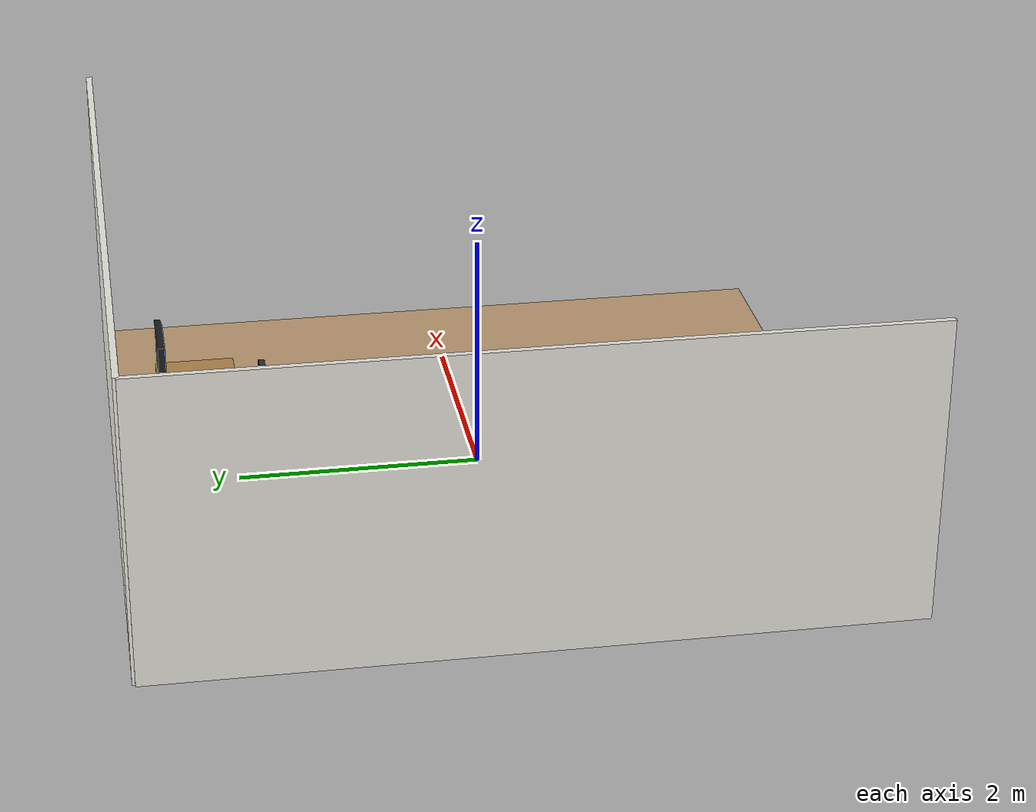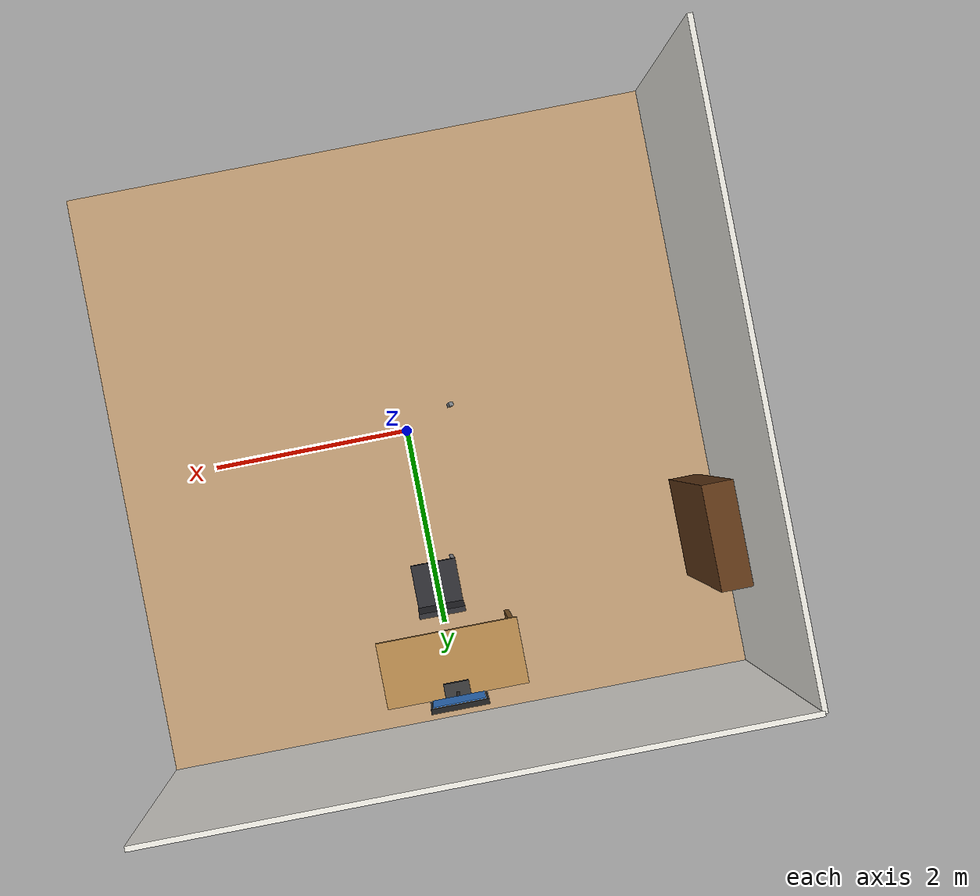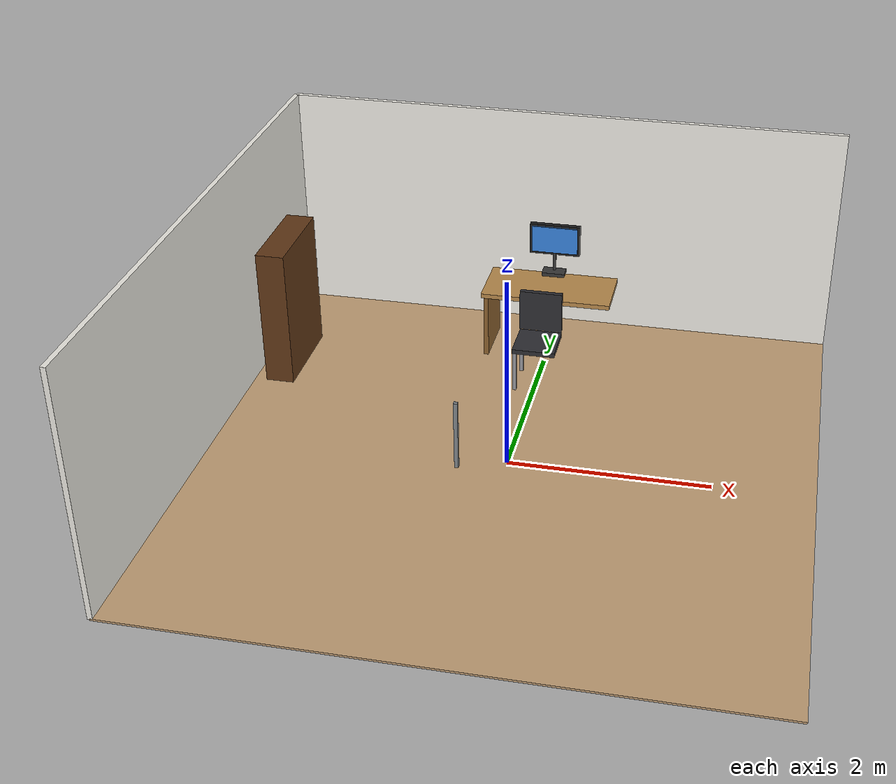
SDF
<sdf version="1.10">
 <world name="bps_room">
  <model name="floor">
   <static>true</static>
   <link name="link">
    <collision name="collision"><geometry><box><size>6 6 0.02</size></box></geometry></collision>
    <visual name="visual">
     <geometry><box><size>6 6 0.02</size></box></geometry>
     <material>
      <ambient>0.75999999 0.620000005 0.460000008 1</ambient>
      <diffuse>0.75999999 0.620000005 0.460000008 1</diffuse>
     </material>
    </visual>
    <inertial>
     <mass>1</mass>
     <inertia><ixx>1</ixx><ixy>0</ixy><ixz>0</ixz><iyy>1</iyy><iyz>0</iyz><izz>1</izz></inertia>
    </inertial>
   </link>
  </model>
  <model name="wall_north">
   <static>true</static>
   <pose>0 3 1.25 0 0 0</pose>
   <link name="link">
    <collision name="collision">
     <geometry><box><size>6 0.050000000000000003 2.5</size></box></geometry>
    </collision>
    <visual name="visual">
     <geometry><box><size>6 0.050000000000000003 2.5</size></box></geometry>
     <material>
      <ambient>0.949999988 0.939999998 0.910000026 1</ambient>
      <diffuse>0.949999988 0.939999998 0.910000026 1</diffuse>
     </material>
    </visual>
    <inertial>
     <mass>1</mass>
     <inertia><ixx>1</ixx><ixy>0</ixy><ixz>0</ixz><iyy>1</iyy><iyz>0</iyz><izz>1</izz></inertia>
    </inertial>
   </link>
  </model>
  <model name="wall_west">
   <static>true</static>
   <pose>-3 0 1.25 0 0 0</pose>
   <link name="link">
    <collision name="collision">
     <geometry><box><size>0.050000000000000003 6 2.5</size></box></geometry>
    </collision>
    <visual name="visual">
     <geometry><box><size>0.050000000000000003 6 2.5</size></box></geometry>
     <material>
      <ambient>0.930000007 0.920000017 0.889999986 1</ambient>
      <diffuse>0.930000007 0.920000017 0.889999986 1</diffuse>
     </material>
    </visual>
    <inertial>
     <mass>1</mass>
     <inertia><ixx>1</ixx><ixy>0</ixy><ixz>0</ixz><iyy>1</iyy><iyz>0</iyz><izz>1</izz></inertia>
    </inertial>
   </link>
  </model>
  <model name="bookshelf_body">
   <static>true</static>
   <pose>-2.7000000000000002 1.5 0.75 0 0 0</pose>
   <link name="link">
    <collision name="collision"><geometry><box><size>0.29999999999999999 1 1.5</size></box></geometry></collision>
    <visual name="visual">
     <geometry><box><size>0.29999999999999999 1 1.5</size></box></geometry>
     <material>
      <ambient>0.379999995 0.219999999 0.0900000036 1</ambient>
      <diffuse>0.379999995 0.219999999 0.0900000036 1</diffuse>
     </material>
    </visual>
    <inertial>
     <mass>1</mass>
     <inertia><ixx>1</ixx><ixy>0</ixy><ixz>0</ixz><iyy>1</iyy><iyz>0</iyz><izz>1</izz></inertia>
    </inertial>
   </link>
  </model>
  <model name="shelf_1">
   <static>true</static>
   <pose>-2.7000000000000002 1.5 0.40000000000000002 0 0 0</pose>
   <link name="link">
    <collision name="collision">
     <geometry><box><size>0.28000000000000003 0.94999999999999996 0.02</size></box></geometry>
    </collision>
    <visual name="visual">
     <geometry><box><size>0.28000000000000003 0.94999999999999996 0.02</size></box></geometry>
     <material>
      <ambient>0.5 0.319999993 0.140000001 1</ambient>
      <diffuse>0.5 0.319999993 0.140000001 1</diffuse>
     </material>
    </visual>
    <inertial>
     <mass>1</mass>
     <inertia><ixx>1</ixx><ixy>0</ixy><ixz>0</ixz><iyy>1</iyy><iyz>0</iyz><izz>1</izz></inertia>
    </inertial>
   </link>
  </model>
  <model name="shelf_2">
   <static>true</static>
   <pose>-2.7000000000000002 1.5 0.84999999999999998 0 0 0</pose>
   <link name="link">
    <collision name="collision">
     <geometry><box><size>0.28000000000000003 0.94999999999999996 0.02</size></box></geometry>
    </collision>
    <visual name="visual">
     <geometry><box><size>0.28000000000000003 0.94999999999999996 0.02</size></box></geometry>
     <material>
      <ambient>0.5 0.319999993 0.140000001 1</ambient>
      <diffuse>0.5 0.319999993 0.140000001 1</diffuse>
     </material>
    </visual>
    <inertial>
     <mass>1</mass>
     <inertia><ixx>1</ixx><ixy>0</ixy><ixz>0</ixz><iyy>1</iyy><iyz>0</iyz><izz>1</izz></inertia>
    </inertial>
   </link>
  </model>
  <model name="shelf_3">
   <static>true</static>
   <pose>-2.7000000000000002 1.5 1.25 0 0 0</pose>
   <link name="link">
    <collision name="collision">
     <geometry><box><size>0.28000000000000003 0.94999999999999996 0.02</size></box></geometry>
    </collision>
    <visual name="visual">
     <geometry><box><size>0.28000000000000003 0.94999999999999996 0.02</size></box></geometry>
     <material>
      <ambient>0.5 0.319999993 0.140000001 1</ambient>
      <diffuse>0.5 0.319999993 0.140000001 1</diffuse>
     </material>
    </visual>
    <inertial>
     <mass>1</mass>
     <inertia><ixx>1</ixx><ixy>0</ixy><ixz>0</ixz><iyy>1</iyy><iyz>0</iyz><izz>1</izz></inertia>
    </inertial>
   </link>
  </model>
  <model name="books_row1">
   <static>true</static>
   <pose>-2.6200000000000001 1.5 0.62 0 0 0</pose>
   <link name="link">
    <visual name="visual">
     <geometry><box><size>0.040000000000000001 0.80000000000000004 0.20000000000000001</size></box></geometry>
     <material>
      <ambient>0.779999971 0.180000007 0.180000007 1</ambient>
      <diffuse>0.779999971 0.180000007 0.180000007 1</diffuse>
     </material>
    </visual>
    <inertial>
     <mass>1</mass>
     <inertia><ixx>1</ixx><ixy>0</ixy><ixz>0</ixz><iyy>1</iyy><iyz>0</iyz><izz>1</izz></inertia>
    </inertial>
   </link>
  </model>
  <model name="books_row2">
   <static>true</static>
   <pose>-2.6200000000000001 1.5 1.0600000000000001 0 0 0</pose>
   <link name="link">
    <visual name="visual">
     <geometry><box><size>0.040000000000000001 0.69999999999999996 0.17999999999999999</size></box></geometry>
     <material>
      <ambient>0.180000007 0.319999993 0.720000029 1</ambient>
      <diffuse>0.180000007 0.319999993 0.720000029 1</diffuse>
     </material>
    </visual>
    <inertial>
     <mass>1</mass>
     <inertia><ixx>1</ixx><ixy>0</ixy><ixz>0</ixz><iyy>1</iyy><iyz>0</iyz><izz>1</izz></inertia>
    </inertial>
   </link>
  </model>
  <model name="desk">
   <static>true</static>
   <pose>0 2.2999999999999998 0.75 0 0 0</pose>
   <link name="link">
    <collision name="collision">
     <geometry><box><size>1.3999999999999999 0.65000000000000002 0.050000000000000003</size></box></geometry>
    </collision>
    <visual name="visual">
     <geometry><box><size>1.3999999999999999 0.65000000000000002 0.050000000000000003</size></box></geometry>
     <material>
      <ambient>0.720000029 0.540000021 0.300000012 1</ambient>
      <diffuse>0.720000029 0.540000021 0.300000012 1</diffuse>
     </material>
    </visual>
    <inertial>
     <mass>1</mass>
     <inertia><ixx>1</ixx><ixy>0</ixy><ixz>0</ixz><iyy>1</iyy><iyz>0</iyz><izz>1</izz></inertia>
    </inertial>
   </link>
  </model>
  <model name="desk_leg_left">
   <static>true</static>
   <pose>-0.65000000000000002 2.2999999999999998 0.375 0 0 0</pose>
   <link name="link">
    <collision name="collision">
     <geometry><box><size>0.050000000000000003 0.59999999999999998 0.75</size></box></geometry>
    </collision>
    <visual name="visual">
     <geometry><box><size>0.050000000000000003 0.59999999999999998 0.75</size></box></geometry>
     <material>
      <ambient>0.550000012 0.379999995 0.180000007 1</ambient>
      <diffuse>0.550000012 0.379999995 0.180000007 1</diffuse>
     </material>
    </visual>
    <inertial>
     <mass>1</mass>
     <inertia><ixx>1</ixx><ixy>0</ixy><ixz>0</ixz><iyy>1</iyy><iyz>0</iyz><izz>1</izz></inertia>
    </inertial>
   </link>
  </model>
  <model name="monitor_base">
   <static>true</static>
   <pose>0 2.5499999999999998 0.81999999999999995 0 0 0</pose>
   <link name="link">
    <collision name="collision">
     <geometry><box><size>0.25 0.14999999999999999 0.040000000000000001</size></box></geometry>
    </collision>
    <visual name="visual">
     <geometry><box><size>0.25 0.14999999999999999 0.040000000000000001</size></box></geometry>
     <material>
      <ambient>0.219999999 0.219999999 0.219999999 1</ambient>
      <diffuse>0.219999999 0.219999999 0.219999999 1</diffuse>
     </material>
    </visual>
    <inertial>
     <mass>1</mass>
     <inertia><ixx>1</ixx><ixy>0</ixy><ixz>0</ixz><iyy>1</iyy><iyz>0</iyz><izz>1</izz></inertia>
    </inertial>
   </link>
  </model>
  <model name="monitor_stand">
   <static>true</static>
   <pose>0 2.5800000000000001 0.96999999999999997 0 0 0</pose>
   <link name="link">
    <collision name="collision">
     <geometry><box><size>0.029999999999999999 0.029999999999999999 0.26000000000000001</size></box></geometry>
    </collision>
    <visual name="visual">
     <geometry><box><size>0.029999999999999999 0.029999999999999999 0.26000000000000001</size></box></geometry>
     <material>
      <ambient>0.219999999 0.219999999 0.219999999 1</ambient>
      <diffuse>0.219999999 0.219999999 0.219999999 1</diffuse>
     </material>
    </visual>
    <inertial>
     <mass>1</mass>
     <inertia><ixx>1</ixx><ixy>0</ixy><ixz>0</ixz><iyy>1</iyy><iyz>0</iyz><izz>1</izz></inertia>
    </inertial>
   </link>
  </model>
  <model name="monitor_screen">
   <static>true</static>
   <pose>0 2.6000000000000001 1.2 0 0 0</pose>
   <link name="link">
    <collision name="collision">
     <geometry><box><size>0.55000000000000004 0.050000000000000003 0.34999999999999998</size></box></geometry>
    </collision>
    <visual name="visual">
     <geometry><box><size>0.55000000000000004 0.050000000000000003 0.34999999999999998</size></box></geometry>
     <material>
      <ambient>0.119999997 0.119999997 0.119999997 1</ambient>
      <diffuse>0.119999997 0.119999997 0.119999997 1</diffuse>
     </material>
    </visual>
    <inertial>
     <mass>1</mass>
     <inertia><ixx>1</ixx><ixy>0</ixy><ixz>0</ixz><iyy>1</iyy><iyz>0</iyz><izz>1</izz></inertia>
    </inertial>
   </link>
  </model>
  <model name="monitor_face">
   <static>true</static>
   <pose>0 2.5699999999999998 1.2 0 0 0</pose>
   <link name="link">
    <visual name="visual">
     <geometry><box><size>0.5 0.01 0.29999999999999999</size></box></geometry>
     <material>
      <ambient>0.219999999 0.519999981 0.879999995 1</ambient>
      <diffuse>0.219999999 0.519999981 0.879999995 1</diffuse>
      <emissive>0.100000001 0.25 0.449999988 1</emissive>
     </material>
    </visual>
    <inertial>
     <mass>1</mass>
     <inertia><ixx>1</ixx><ixy>0</ixy><ixz>0</ixz><iyy>1</iyy><iyz>0</iyz><izz>1</izz></inertia>
    </inertial>
   </link>
  </model>
  <model name="chair_seat">
   <static>true</static>
   <pose>0 1.55 0.47999999999999998 0 0 0</pose>
   <link name="link">
    <collision name="collision">
     <geometry><box><size>0.45000000000000001 0.45000000000000001 0.050000000000000003</size></box></geometry>
    </collision>
    <visual name="visual">
     <geometry><box><size>0.45000000000000001 0.45000000000000001 0.050000000000000003</size></box></geometry>
     <material>
      <ambient>0.180000007 0.180000007 0.200000003 1</ambient>
      <diffuse>0.180000007 0.180000007 0.200000003 1</diffuse>
     </material>
    </visual>
    <inertial>
     <mass>1</mass>
     <inertia><ixx>1</ixx><ixy>0</ixy><ixz>0</ixz><iyy>1</iyy><iyz>0</iyz><izz>1</izz></inertia>
    </inertial>
   </link>
  </model>
  <model name="chair_back">
   <static>true</static>
   <pose>0 1.77 0.75 0 0 0</pose>
   <link name="link">
    <collision name="collision">
     <geometry><box><size>0.45000000000000001 0.050000000000000003 0.45000000000000001</size></box></geometry>
    </collision>
    <visual name="visual">
     <geometry><box><size>0.45000000000000001 0.050000000000000003 0.45000000000000001</size></box></geometry>
     <material>
      <ambient>0.180000007 0.180000007 0.200000003 1</ambient>
      <diffuse>0.180000007 0.180000007 0.200000003 1</diffuse>
     </material>
    </visual>
    <inertial>
     <mass>1</mass>
     <inertia><ixx>1</ixx><ixy>0</ixy><ixz>0</ixz><iyy>1</iyy><iyz>0</iyz><izz>1</izz></inertia>
    </inertial>
   </link>
  </model>
  <model name="chair_leg_fl">
   <static>true</static>
   <pose>-0.20000000000000001 1.3500000000000001 0.23999999999999999 0 0 0</pose>
   <link name="link">
    <collision name="collision">
     <geometry><box><size>0.040000000000000001 0.040000000000000001 0.47999999999999998</size></box></geometry>
    </collision>
    <visual name="visual">
     <geometry><box><size>0.040000000000000001 0.040000000000000001 0.47999999999999998</size></box></geometry>
     <material>
      <ambient>0.600000024 0.600000024 0.620000005 1</ambient>
      <diffuse>0.600000024 0.600000024 0.620000005 1</diffuse>
     </material>
    </visual>
    <inertial>
     <mass>1</mass>
     <inertia><ixx>1</ixx><ixy>0</ixy><ixz>0</ixz><iyy>1</iyy><iyz>0</iyz><izz>1</izz></inertia>
    </inertial>
   </link>
  </model>
  <model name="chair_leg_bl">
   <static>true</static>
   <pose>-0.20000000000000001 1.75 0.23999999999999999 0 0 0</pose>
   <link name="link">
    <collision name="collision">
     <geometry><box><size>0.040000000000000001 0.040000000000000001 0.47999999999999998</size></box></geometry>
    </collision>
    <visual name="visual">
     <geometry><box><size>0.040000000000000001 0.040000000000000001 0.47999999999999998</size></box></geometry>
     <material>
      <ambient>0.600000024 0.600000024 0.620000005 1</ambient>
      <diffuse>0.600000024 0.600000024 0.620000005 1</diffuse>
     </material>
    </visual>
    <inertial>
     <mass>1</mass>
     <inertia><ixx>1</ixx><ixy>0</ixy><ixz>0</ixz><iyy>1</iyy><iyz>0</iyz><izz>1</izz></inertia>
    </inertial>
   </link>
  </model>
  <model name="table_leg_bl">
   <static>true</static>
   <pose>-0.46999999999999997 -0.17999999999999999 0.375 0 0 0</pose>
   <link name="link">
    <collision name="collision">
     <geometry><box><size>0.040000000000000001 0.040000000000000001 0.75</size></box></geometry>
    </collision>
    <visual name="visual">
     <geometry><box><size>0.040000000000000001 0.040000000000000001 0.75</size></box></geometry>
     <material>
      <ambient>0.5 0.519999981 0.540000021 1</ambient>
      <diffuse>0.5 0.519999981 0.540000021 1</diffuse>
     </material>
    </visual>
    <inertial>
     <mass>1</mass>
     <inertia><ixx>1</ixx><ixy>0</ixy><ixz>0</ixz><iyy>1</iyy><iyz>0</iyz><izz>1</izz></inertia>
    </inertial>
   </link>
  </model>
 </world>
</sdf>
